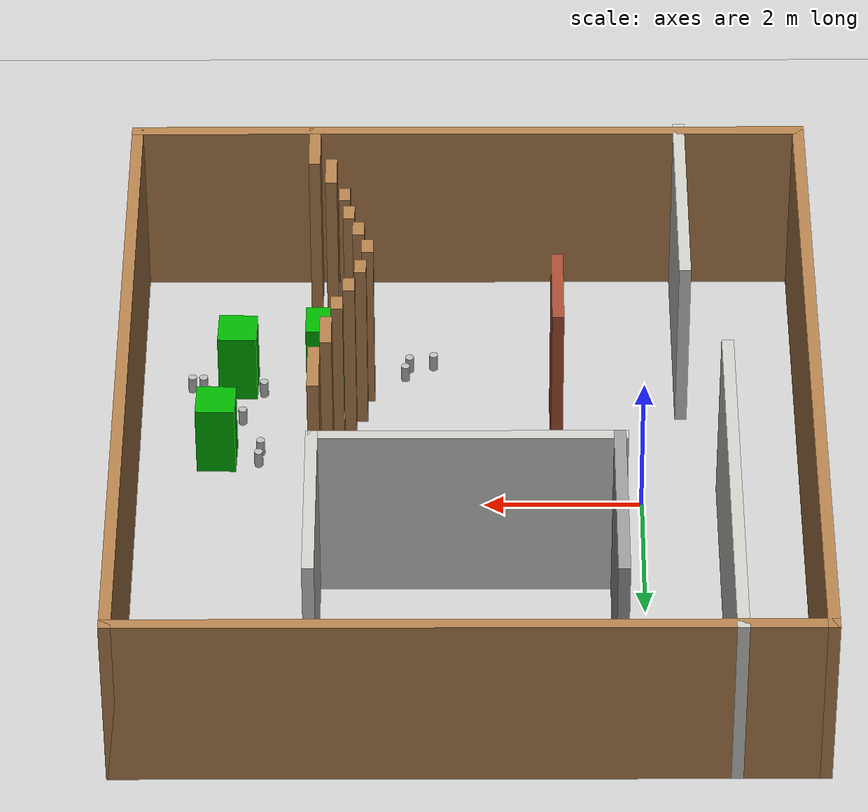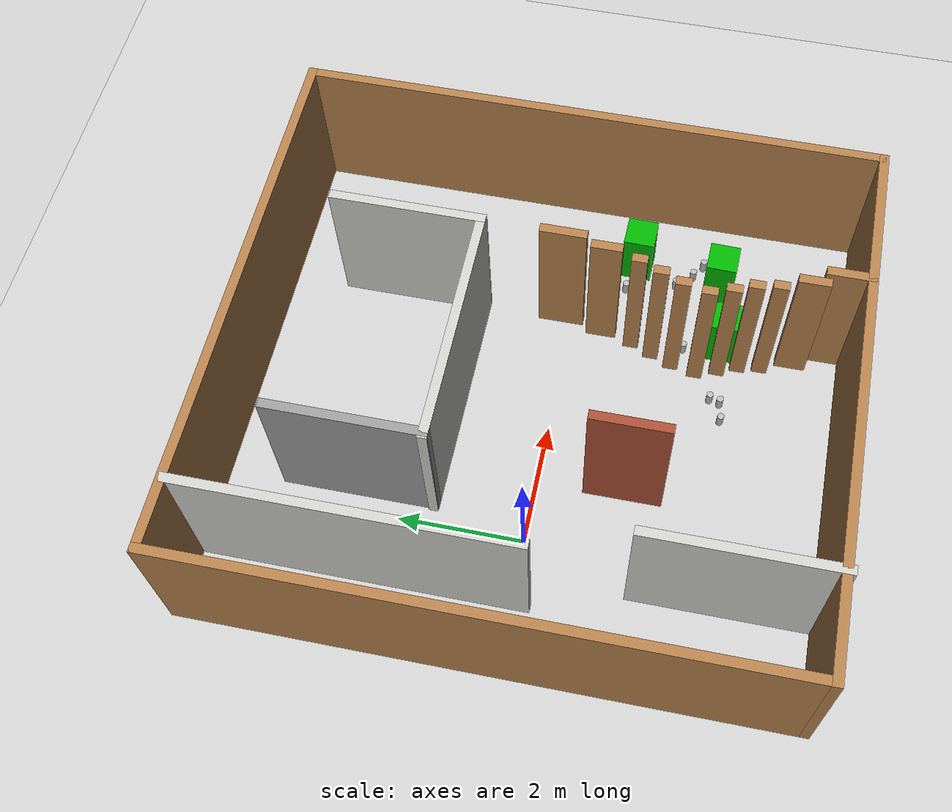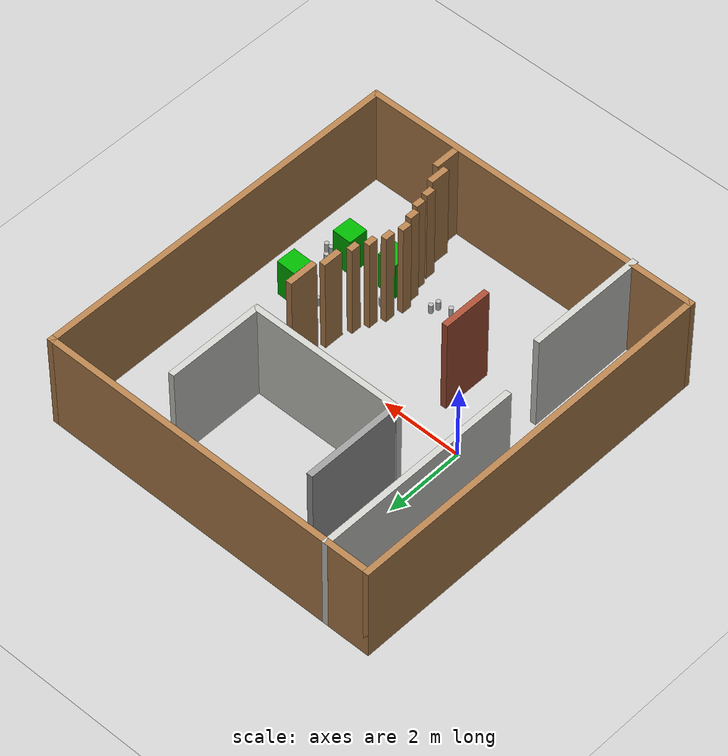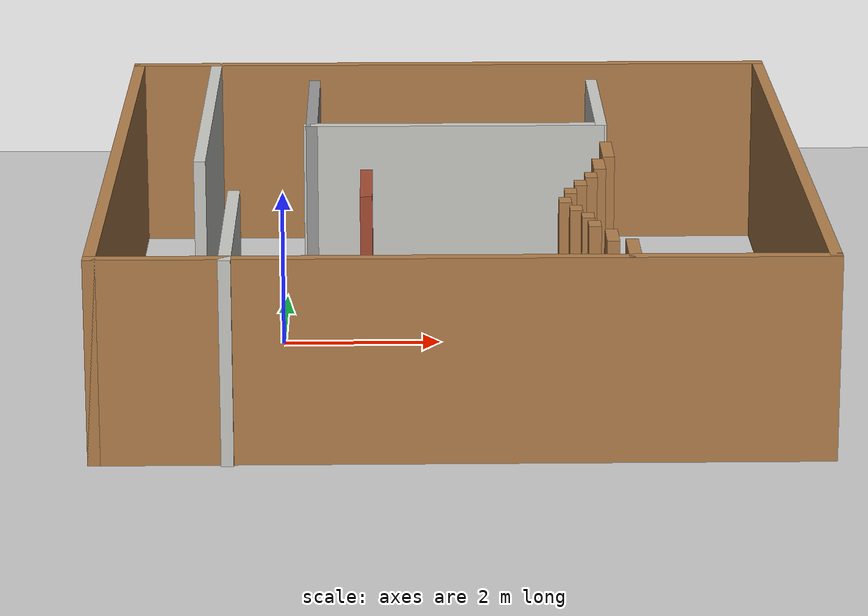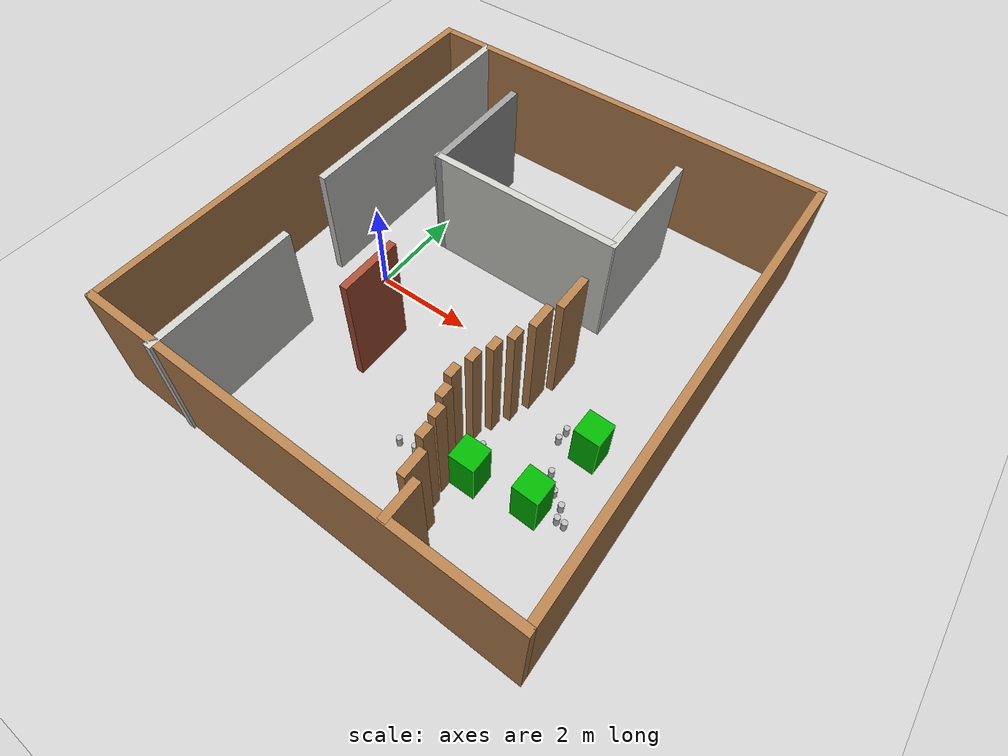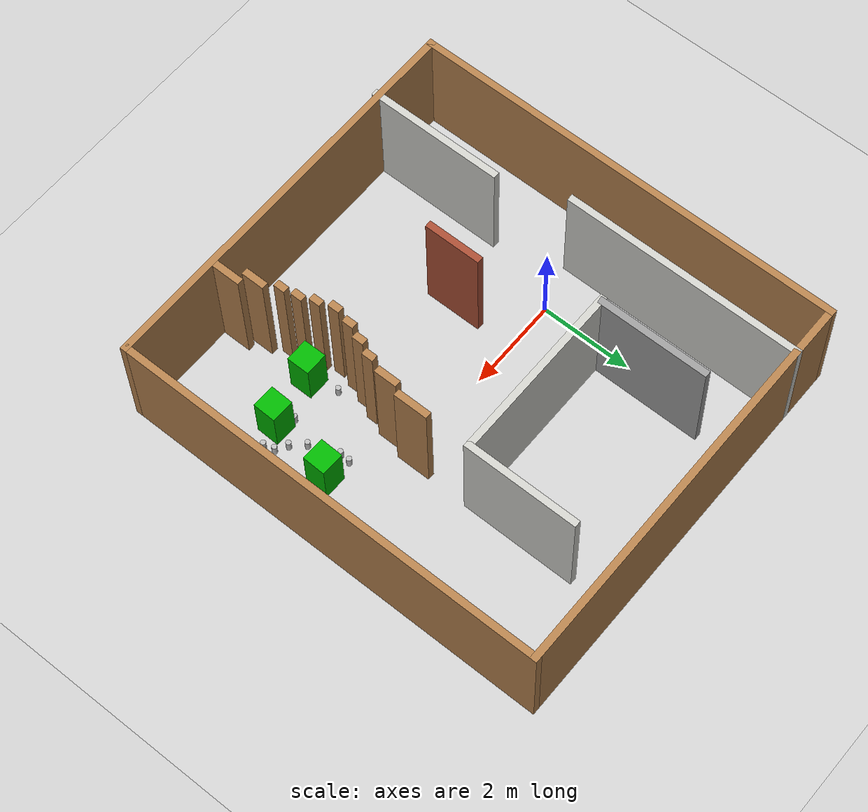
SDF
<sdf version="1.6">
 <world name="default">
  <model name="ground_plane">
   <static>1</static>
   <link name="link">
    <collision name="collision">
     <geometry><plane><normal>0 0 1</normal><size>100 100</size></plane></geometry>
     <surface><friction><ode><mu>100</mu><mu2>50</mu2></ode></friction></surface>
    </collision>
    <visual name="visual">
     <cast_shadows>0</cast_shadows>
     <geometry><plane><normal>0 0 1</normal><size>100 100</size></plane></geometry>
     <material>
      <script><uri>file://media/materials/scripts/gazebo.material</uri><name>Gazebo/Grey</name></script>
     </material>
    </visual>
   </link>
  </model>
  <model name="comp4034_environment">
   <pose>2.19918 0.147113 0 0 -0 0</pose>
   <link name="Wall_1">
    <collision name="Wall_1_Collision">
     <geometry><box><size>8.75 0.15 2.5</size></box></geometry>
     <pose>0 0 1.25 0 -0 0</pose>
    </collision>
    <visual name="Wall_1_Visual">
     <pose>0 0 1.25 0 -0 0</pose>
     <geometry><box><size>8.75 0.15 2.5</size></box></geometry>
     <material>
      <script><uri>file://media/materials/scripts/gazebo.material</uri><name>Gazebo/Wood</name></script>
      <ambient>1 1 1 1</ambient>
     </material>
     <meta><layer>0</layer></meta>
    </visual>
    <pose>-0 -4.67766 0 0 -0 0</pose>
   </link>
   <link name="Wall_16">
    <collision name="Wall_16_Collision">
     <geometry><box><size>0.25 0.15 2.5</size></box></geometry>
     <pose>0 0 1.25 0 -0 0</pose>
    </collision>
    <visual name="Wall_16_Visual">
     <pose>0 0 1.25 0 -0 0</pose>
     <geometry><box><size>0.25 0.15 2.5</size></box></geometry>
     <material>
      <script><uri>file://media/materials/scripts/gazebo.material</uri><name>Gazebo/Wood</name></script>
      <ambient>1 1 1 1</ambient>
     </material>
     <meta><layer>0</layer></meta>
    </visual>
    <pose>1.39958 -2.65835 0 0 -0 1.5708</pose>
   </link>
   <link name="Wall_18">
    <collision name="Wall_18_Collision">
     <geometry><box><size>0.25 0.15 2.5</size></box></geometry>
     <pose>0 0 1.25 0 -0 0</pose>
    </collision>
    <visual name="Wall_18_Visual">
     <pose>0 0 1.25 0 -0 0</pose>
     <geometry><box><size>0.25 0.15 2.5</size></box></geometry>
     <material>
      <script><uri>file://media/materials/scripts/gazebo.material</uri><name>Gazebo/Wood</name></script>
      <ambient>1 1 1 1</ambient>
     </material>
     <meta><layer>0</layer></meta>
    </visual>
    <pose>1.28384 -2.30376 0 0 -0 1.5708</pose>
   </link>
   <link name="Wall_21">
    <collision name="Wall_21_Collision">
     <geometry><box><size>0.25 0.15 2.5</size></box></geometry>
     <pose>0 0 1.25 0 -0 0</pose>
    </collision>
    <visual name="Wall_21_Visual">
     <pose>0 0 1.25 0 -0 0</pose>
     <geometry><box><size>0.25 0.15 2.5</size></box></geometry>
     <material>
      <script><uri>file://media/materials/scripts/gazebo.material</uri><name>Gazebo/Wood</name></script>
      <ambient>1 1 1 1</ambient>
     </material>
     <meta><layer>0</layer></meta>
    </visual>
    <pose>1.36975 -1.89289 0 0 -0 1.5708</pose>
   </link>
   <link name="Wall_23">
    <collision name="Wall_23_Collision">
     <geometry><box><size>0.25 0.15 2.5</size></box></geometry>
     <pose>0 0 1.25 0 -0 0</pose>
    </collision>
    <visual name="Wall_23_Visual">
     <pose>0 0 1.25 0 -0 0</pose>
     <geometry><box><size>0.25 0.15 2.5</size></box></geometry>
     <material>
      <script><uri>file://media/materials/scripts/gazebo.material</uri><name>Gazebo/Wood</name></script>
      <ambient>1 1 1 1</ambient>
     </material>
     <meta><layer>0</layer></meta>
    </visual>
    <pose>1.50857 -1.53493 0 0 -0 1.5708</pose>
   </link>
   <link name="Wall_25">
    <collision name="Wall_25_Collision">
     <geometry><box><size>0.25 0.15 2.5</size></box></geometry>
     <pose>0 0 1.25 0 -0 0</pose>
    </collision>
    <visual name="Wall_25_Visual">
     <pose>0 0 1.25 0 -0 0</pose>
     <geometry><box><size>0.25 0.15 2.5</size></box></geometry>
     <material>
      <script><uri>file://media/materials/scripts/gazebo.material</uri><name>Gazebo/Wood</name></script>
      <ambient>1 1 1 1</ambient>
     </material>
     <meta><layer>0</layer></meta>
    </visual>
    <pose>1.65732 -1.18034 0 0 -0 1.5708</pose>
   </link>
   <link name="Wall_27">
    <collision name="Wall_27_Collision">
     <geometry><box><size>0.5 0.15 2.5</size></box></geometry>
     <pose>0 0 1.25 0 -0 0</pose>
    </collision>
    <visual name="Wall_27_Visual">
     <pose>0 0 1.25 0 -0 0</pose>
     <geometry><box><size>0.5 0.15 2.5</size></box></geometry>
     <material>
      <script><uri>file://media/materials/scripts/gazebo.material</uri><name>Gazebo/Wood</name></script>
      <ambient>1 1 1 1</ambient>
     </material>
     <meta><layer>0</layer></meta>
    </visual>
    <pose>1.78619 -0.651034 0 0 -0 1.5708</pose>
   </link>
   <link name="Wall_3">
    <collision name="Wall_3_Collision">
     <geometry><box><size>9.5529 0.15 2.5</size></box></geometry>
     <pose>0 0 1.25 0 -0 0</pose>
    </collision>
    <visual name="Wall_3_Visual">
     <pose>0 0 1.25 0 -0 0</pose>
     <geometry><box><size>9.5529 0.15 2.5</size></box></geometry>
     <material>
      <script><uri>file://media/materials/scripts/gazebo.material</uri><name>Gazebo/Wood</name></script>
      <ambient>1 1 1 1</ambient>
     </material>
     <meta><layer>0</layer></meta>
    </visual>
    <pose>-4.3 0.023792 0 0 -0 1.5708</pose>
   </link>
   <link name="Wall_30">
    <collision name="Wall_30_Collision">
     <geometry><box><size>0.75 0.15 2.5</size></box></geometry>
     <pose>0 0 1.25 0 -0 0</pose>
    </collision>
    <visual name="Wall_30_Visual">
     <pose>0 0 1.25 0 -0 0</pose>
     <geometry><box><size>0.75 0.15 2.5</size></box></geometry>
     <material>
      <script><uri>file://media/materials/scripts/gazebo.material</uri><name>Gazebo/Wood</name></script>
      <ambient>1 1 1 1</ambient>
     </material>
     <meta><layer>0</layer></meta>
    </visual>
    <pose>1.92912 0.051937 0 0 -0 1.5708</pose>
   </link>
   <link name="Wall_32">
    <collision name="Wall_32_Collision">
     <geometry><box><size>2.5 0.15 2.5</size></box></geometry>
     <pose>0 0 1.25 0 -0 0</pose>
    </collision>
    <visual name="Wall_32_Visual">
     <pose>0 0 1.25 0 -0 0</pose>
     <geometry><box><size>2.5 0.15 2.5</size></box></geometry>
     <material>
      <script><uri>file://media/materials/scripts/gazebo.material</uri><name>Gazebo/CeilingTiled</name></script>
      <ambient>0.760784 0.662745 0.627451 1</ambient>
     </material>
     <meta><layer>0</layer></meta>
    </visual>
    <pose>1.9255 2.52077 0 0 -0 1.5708</pose>
   </link>
   <link name="Wall_34">
    <collision name="Wall_34_Collision">
     <geometry><box><size>3.92584 0.15 2.5</size></box></geometry>
     <pose>0 0 1.25 0 -0 0</pose>
    </collision>
    <visual name="Wall_34_Visual">
     <pose>0 0 1.25 0 -0 0</pose>
     <geometry><box><size>3.92584 0.15 2.5</size></box></geometry>
     <material>
      <script><uri>file://media/materials/scripts/gazebo.material</uri><name>Gazebo/CeilingTiled</name></script>
      <ambient>0.760784 0.662745 0.627451 1</ambient>
     </material>
     <meta><layer>0</layer></meta>
    </visual>
    <pose>0.007157 1.34577 0 0 -0 3.14159</pose>
   </link>
   <link name="Wall_4">
    <collision name="Wall_4_Collision">
     <geometry><box><size>8.75 0.15 2.5</size></box></geometry>
     <pose>0 0 1.25 0 -0 0</pose>
    </collision>
    <visual name="Wall_4_Visual">
     <pose>0 0 1.25 0 -0 0</pose>
     <geometry><box><size>8.75 0.15 2.5</size></box></geometry>
     <material>
      <script><uri>file://media/materials/scripts/gazebo.material</uri><name>Gazebo/Wood</name></script>
      <ambient>1 1 1 1</ambient>
     </material>
     <meta><layer>0</layer></meta>
    </visual>
    <pose>-0 4.72524 0 0 -0 0</pose>
   </link>
   <link name="Wall_40">
    <collision name="Wall_40_Collision">
     <geometry><box><size>1.25 0.15 2.5</size></box></geometry>
     <pose>0 0 1.25 0 -0 0</pose>
    </collision>
    <visual name="Wall_40_Visual">
     <pose>0 0 1.25 0 -0 0</pose>
     <geometry><box><size>1.25 0.15 2.5</size></box></geometry>
     <material>
      <script><uri>file://media/materials/scripts/gazebo.material</uri><name>Gazebo/Bricks</name></script>
      <ambient>1 1 1 1</ambient>
     </material>
     <meta><layer>0</layer></meta>
    </visual>
    <pose>-1.12606 -1.50275 0 0 -0 -1.5708</pose>
   </link>
   <link name="Wall_45">
    <collision name="Wall_45_Collision">
     <geometry><box><size>0.5 0.15 2.5</size></box></geometry>
     <pose>0 0 1.25 0 -0 0</pose>
    </collision>
    <visual name="Wall_45_Visual">
     <pose>0 0 1.25 0 -0 0</pose>
     <geometry><box><size>0.5 0.15 2.5</size></box></geometry>
     <material>
      <script><uri>file://media/materials/scripts/gazebo.material</uri><name>Gazebo/Wood</name></script>
      <ambient>1 1 1 1</ambient>
     </material>
     <meta><layer>0</layer></meta>
    </visual>
    <pose>1.76668 -3.82995 0 0 -0 1.5708</pose>
   </link>
   <link name="Wall_5">
    <collision name="Wall_5_Collision">
     <geometry><box><size>9.5 0.15 2.5</size></box></geometry>
     <pose>0 0 1.25 0 -0 0</pose>
    </collision>
    <visual name="Wall_5_Visual">
     <pose>0 0 1.25 0 -0 0</pose>
     <geometry><box><size>9.5 0.15 2.5</size></box></geometry>
     <material>
      <script><uri>file://media/materials/scripts/gazebo.material</uri><name>Gazebo/Wood</name></script>
      <ambient>1 1 1 1</ambient>
     </material>
     <meta><layer>0</layer></meta>
    </visual>
    <pose>4.3 0.050242 0 0 -0 -1.5708</pose>
   </link>
   <link name="Wall_52">
    <collision name="Wall_52_Collision">
     <geometry><box><size>0.75 0.15 2.5</size></box></geometry>
     <pose>0 0 1.25 0 -0 0</pose>
    </collision>
    <visual name="Wall_52_Visual">
     <pose>0 0 1.25 0 -0 0</pose>
     <geometry><box><size>0.75 0.15 2.5</size></box></geometry>
     <material>
      <script><uri>file://media/materials/scripts/gazebo.material</uri><name>Gazebo/Wood</name></script>
      <ambient>1 1 1 1</ambient>
     </material>
     <meta><layer>0</layer></meta>
    </visual>
    <pose>1.98668 -4.35495 0 0 -0 1.5708</pose>
   </link>
   <link name="Wall_56">
    <collision name="Wall_56_Collision">
     <geometry><box><size>0.25 0.15 2.5</size></box></geometry>
     <pose>0 0 1.25 0 -0 0</pose>
    </collision>
    <visual name="Wall_56_Visual">
     <pose>0 0 1.25 0 -0 0</pose>
     <geometry><box><size>0.25 0.15 2.5</size></box></geometry>
     <material>
      <script><uri>file://media/materials/scripts/gazebo.material</uri><name>Gazebo/Wood</name></script>
      <ambient>1 1 1 1</ambient>
     </material>
     <meta><layer>0</layer></meta>
    </visual>
    <pose>1.52668 -2.98495 0 0 -0 -1.5708</pose>
   </link>
   <link name="Wall_58">
    <collision name="Wall_58_Collision">
     <geometry><box><size>0.25 0.15 2.5</size></box></geometry>
     <pose>0 0 1.25 0 -0 0</pose>
    </collision>
    <visual name="Wall_58_Visual">
     <pose>0 0 1.25 0 -0 0</pose>
     <geometry><box><size>0.25 0.15 2.5</size></box></geometry>
     <material>
      <script><uri>file://media/materials/scripts/gazebo.material</uri><name>Gazebo/Wood</name></script>
      <ambient>1 1 1 1</ambient>
     </material>
     <meta><layer>0</layer></meta>
    </visual>
    <pose>1.58668 -3.34495 0 0 -0 -1.5708</pose>
   </link>
   <link name="Wall_60">
    <collision name="Wall_60_Collision">
     <geometry><box><size>2.5 0.15 2.5</size></box></geometry>
     <pose>0 0 1.25 0 -0 0</pose>
    </collision>
    <visual name="Wall_60_Visual">
     <pose>0 0 1.25 0 -0 0</pose>
     <geometry><box><size>2.5 0.15 2.5</size></box></geometry>
     <material>
      <script><uri>file://media/materials/scripts/gazebo.material</uri><name>Gazebo/Grey</name></script>
      <ambient>1 1 1 1</ambient>
     </material>
     <meta><layer>0</layer></meta>
    </visual>
    <pose>-1.85035 2.52077 0 0 -0 1.5708</pose>
   </link>
   <link name="Wall_7">
    <collision name="Wall_7_Collision">
     <geometry><box><size>5.25 0.15 2.5</size></box></geometry>
     <pose>0 0 1.25 0 -0 0</pose>
    </collision>
    <visual name="Wall_7_Visual">
     <pose>0 0 1.25 0 -0 0</pose>
     <geometry><box><size>5.25 0.15 2.5</size></box></geometry>
     <material>
      <script><uri>file://media/materials/scripts/gazebo.material</uri><name>Gazebo/CeilingTiled</name></script>
      <ambient>0.760784 0.662745 0.627451 1</ambient>
     </material>
     <meta><layer>0</layer></meta>
    </visual>
    <pose>-3.23089 2.17626 0 0 -0 -1.5708</pose>
   </link>
   <link name="Wall_9">
    <collision name="Wall_9_Collision">
     <geometry><box><size>3 0.15 2.5</size></box></geometry>
     <pose>0 0 1.25 0 -0 0</pose>
    </collision>
    <visual name="Wall_9_Visual">
     <pose>0 0 1.25 0 -0 0</pose>
     <geometry><box><size>3 0.15 2.5</size></box></geometry>
     <material>
      <script><uri>file://media/materials/scripts/gazebo.material</uri><name>Gazebo/CeilingTiled</name></script>
      <ambient>0.760784 0.662745 0.627451 1</ambient>
     </material>
     <meta><layer>0</layer></meta>
    </visual>
    <pose>-2.74464 -3.30126 0 0 -0 1.5708</pose>
   </link>
   <static>1</static>
  </model>
  <model name="beer_1">
   <link name="link">
    <pose>0 0 0.115 0 -0 0</pose>
    <inertial>
     <mass>0.01</mass>
     <inertia><ixx>0.00058</ixx><ixy>0</ixy><ixz>0</ixz><iyy>0.00058</iyy><iyz>0</iyz><izz>0.00019</izz></inertia>
    </inertial>
    <collision name="collision">
     <geometry><cylinder><radius>0.055</radius><length>0.23</length></cylinder></geometry>
    </collision>
    <visual name="visual">
     <geometry><cylinder><radius>0.055</radius><length>0.23</length></cylinder></geometry>
     <material>
      <script>
       <uri>model://beer/materials/scripts</uri>
       <uri>model://beer/materials/textures</uri>
       <name>Beer/Diffuse</name>
      </script>
     </material>
    </visual>
   </link>
   <pose>5.11085 -1.60496 -1e-06 2e-06 0 -7e-06</pose>
  </model>
  <model name="beer_4">
   <link name="link">
    <pose>0 0 0.115 0 -0 0</pose>
    <inertial>
     <mass>0.01</mass>
     <inertia><ixx>0.00058</ixx><ixy>0</ixy><ixz>0</ixz><iyy>0.00058</iyy><iyz>0</iyz><izz>0.00019</izz></inertia>
    </inertial>
    <collision name="collision">
     <geometry><cylinder><radius>0.055</radius><length>0.23</length></cylinder></geometry>
    </collision>
    <visual name="visual">
     <geometry><cylinder><radius>0.055</radius><length>0.23</length></cylinder></geometry>
     <material>
      <script>
       <uri>model://beer/materials/scripts</uri>
       <uri>model://beer/materials/textures</uri>
       <name>Beer/Diffuse</name>
      </script>
     </material>
    </visual>
   </link>
   <pose>5.78051 -2.24553 -1e-06 2e-06 0 -7e-06</pose>
  </model>
  <model name="beer_5">
   <link name="link">
    <pose>0 0 0.115 0 -0 0</pose>
    <inertial>
     <mass>0.01</mass>
     <inertia><ixx>0.00058</ixx><ixy>0</ixy><ixz>0</ixz><iyy>0.00058</iyy><iyz>0</iyz><izz>0.00019</izz></inertia>
    </inertial>
    <collision name="collision">
     <geometry><cylinder><radius>0.055</radius><length>0.23</length></cylinder></geometry>
    </collision>
    <visual name="visual">
     <geometry><cylinder><radius>0.055</radius><length>0.23</length></cylinder></geometry>
     <material>
      <script>
       <uri>model://beer/materials/scripts</uri>
       <uri>model://beer/materials/textures</uri>
       <name>Beer/Diffuse</name>
      </script>
     </material>
    </visual>
   </link>
   <pose>5.57469 -2.02105 -1e-06 2e-06 0 -7e-06</pose>
  </model>
  <model name="beer_6">
   <link name="link">
    <pose>0 0 0.115 0 -0 0</pose>
    <inertial>
     <mass>0.01</mass>
     <inertia><ixx>0.00058</ixx><ixy>0</ixy><ixz>0</ixz><iyy>0.00058</iyy><iyz>0</iyz><izz>0.00019</izz></inertia>
    </inertial>
    <collision name="collision">
     <geometry><cylinder><radius>0.055</radius><length>0.23</length></cylinder></geometry>
    </collision>
    <visual name="visual">
     <geometry><cylinder><radius>0.055</radius><length>0.23</length></cylinder></geometry>
     <material>
      <script>
       <uri>model://beer/materials/scripts</uri>
       <uri>model://beer/materials/textures</uri>
       <name>Beer/Diffuse</name>
      </script>
     </material>
    </visual>
   </link>
   <pose>5.34333 -1.87203 -1e-06 2e-06 0 -7e-06</pose>
  </model>
  <model name="beer_4_clone_12">
   <link name="link">
    <pose>0 0 0.115 0 -0 0</pose>
    <inertial>
     <mass>0.01</mass>
     <inertia><ixx>0.00058</ixx><ixy>0</ixy><ixz>0</ixz><iyy>0.00058</iyy><iyz>0</iyz><izz>0.00019</izz></inertia>
    </inertial>
    <collision name="collision">
     <geometry><cylinder><radius>0.055</radius><length>0.23</length></cylinder></geometry>
    </collision>
    <visual name="visual">
     <geometry><cylinder><radius>0.055</radius><length>0.23</length></cylinder></geometry>
     <material>
      <script>
       <uri>model://beer/materials/scripts</uri>
       <uri>model://beer/materials/textures</uri>
       <name>Beer/Diffuse</name>
      </script>
     </material>
    </visual>
   </link>
   <pose>2.96327 -2.63773 -3e-06 -0 -0 -1e-06</pose>
  </model>
  <model name="beer_4_clone_13">
   <link name="link">
    <pose>0 0 0.115 0 -0 0</pose>
    <inertial>
     <mass>0.01</mass>
     <inertia><ixx>0.00058</ixx><ixy>0</ixy><ixz>0</ixz><iyy>0.00058</iyy><iyz>0</iyz><izz>0.00019</izz></inertia>
    </inertial>
    <collision name="collision">
     <geometry><cylinder><radius>0.055</radius><length>0.23</length></cylinder></geometry>
    </collision>
    <visual name="visual">
     <geometry><cylinder><radius>0.055</radius><length>0.23</length></cylinder></geometry>
     <material>
      <script>
       <uri>model://beer/materials/scripts</uri>
       <uri>model://beer/materials/textures</uri>
       <name>Beer/Diffuse</name>
      </script>
     </material>
    </visual>
   </link>
   <pose>2.6492 -2.6854 -3e-06 -0 -0 -1e-06</pose>
  </model>
  <model name="beer_5_clone">
   <link name="link">
    <pose>0 0 0.115 0 -0 0</pose>
    <inertial>
     <mass>0.01</mass>
     <inertia><ixx>0.00058</ixx><ixy>0</ixy><ixz>0</ixz><iyy>0.00058</iyy><iyz>0</iyz><izz>0.00019</izz></inertia>
    </inertial>
    <collision name="collision">
     <geometry><cylinder><radius>0.055</radius><length>0.23</length></cylinder></geometry>
    </collision>
    <visual name="visual">
     <geometry><cylinder><radius>0.055</radius><length>0.23</length></cylinder></geometry>
     <material>
      <script>
       <uri>model://beer/materials/scripts</uri>
       <uri>model://beer/materials/textures</uri>
       <name>Beer/Diffuse</name>
      </script>
     </material>
    </visual>
   </link>
   <pose>4.84828 -2.15471 -6e-06 0 -0 -2.7e-05</pose>
  </model>
  <model name="beer_5_clone_0">
   <link name="link">
    <pose>0 0 0.115 0 -0 0</pose>
    <inertial>
     <mass>0.01</mass>
     <inertia><ixx>0.00058</ixx><ixy>0</ixy><ixz>0</ixz><iyy>0.00058</iyy><iyz>0</iyz><izz>0.00019</izz></inertia>
    </inertial>
    <collision name="collision">
     <geometry><cylinder><radius>0.055</radius><length>0.23</length></cylinder></geometry>
    </collision>
    <visual name="visual">
     <geometry><cylinder><radius>0.055</radius><length>0.23</length></cylinder></geometry>
     <material>
      <script>
       <uri>model://beer/materials/scripts</uri>
       <uri>model://beer/materials/textures</uri>
       <name>Beer/Diffuse</name>
      </script>
     </material>
    </visual>
   </link>
   <pose>5.63774 -2.24074 -6e-06 0 -0 -2.7e-05</pose>
  </model>
  <model name="beer_3_clone">
   <link name="link">
    <pose>0 0 0.115 0 -0 0</pose>
    <inertial>
     <mass>0.01</mass>
     <inertia><ixx>0.00058</ixx><ixy>0</ixy><ixz>0</ixz><iyy>0.00058</iyy><iyz>0</iyz><izz>0.00019</izz></inertia>
    </inertial>
    <collision name="collision">
     <geometry><cylinder><radius>0.055</radius><length>0.23</length></cylinder></geometry>
    </collision>
    <visual name="visual">
     <geometry><cylinder><radius>0.055</radius><length>0.23</length></cylinder></geometry>
     <material>
      <script>
       <uri>model://beer/materials/scripts</uri>
       <uri>model://beer/materials/textures</uri>
       <name>Beer/Diffuse</name>
      </script>
     </material>
    </visual>
   </link>
   <pose>3.01358 -2.46526 -1e-06 4e-06 -0 -2.5e-05</pose>
  </model>
  <model name="beer_4_clone_10_clone_13">
   <link name="link">
    <pose>0 0 0.115 0 -0 0</pose>
    <inertial>
     <mass>0.01</mass>
     <inertia><ixx>0.00058</ixx><ixy>0</ixy><ixz>0</ixz><iyy>0.00058</iyy><iyz>0</iyz><izz>0.00019</izz></inertia>
    </inertial>
    <collision name="collision">
     <geometry><cylinder><radius>0.055</radius><length>0.23</length></cylinder></geometry>
    </collision>
    <visual name="visual">
     <geometry><cylinder><radius>0.055</radius><length>0.23</length></cylinder></geometry>
     <material>
      <script>
       <uri>model://beer/materials/scripts</uri>
       <uri>model://beer/materials/textures</uri>
       <name>Beer/Diffuse</name>
      </script>
     </material>
    </visual>
   </link>
   <pose>3.88411 -1.9047 -1e-06 2e-06 0 -1.3e-05</pose>
  </model>
  <model name="beer_4_clone_10_clone_14">
   <link name="link">
    <pose>0 0 0.115 0 -0 0</pose>
    <inertial>
     <mass>0.01</mass>
     <inertia><ixx>0.00058</ixx><ixy>0</ixy><ixz>0</ixz><iyy>0.00058</iyy><iyz>0</iyz><izz>0.00019</izz></inertia>
    </inertial>
    <collision name="collision">
     <geometry><cylinder><radius>0.055</radius><length>0.23</length></cylinder></geometry>
    </collision>
    <visual name="visual">
     <geometry><cylinder><radius>0.055</radius><length>0.23</length></cylinder></geometry>
     <material>
      <script>
       <uri>model://beer/materials/scripts</uri>
       <uri>model://beer/materials/textures</uri>
       <name>Beer/Diffuse</name>
      </script>
     </material>
    </visual>
   </link>
   <pose>4.865 -1.00241 -1e-06 2e-06 0 -1.3e-05</pose>
  </model>
  <model name="beer_4_clone_10_clone_15">
   <link name="link">
    <pose>0 0 0.115 0 -0 0</pose>
    <inertial>
     <mass>0.01</mass>
     <inertia><ixx>0.00058</ixx><ixy>0</ixy><ixz>0</ixz><iyy>0.00058</iyy><iyz>0</iyz><izz>0.00019</izz></inertia>
    </inertial>
    <collision name="collision">
     <geometry><cylinder><radius>0.055</radius><length>0.23</length></cylinder></geometry>
    </collision>
    <visual name="visual">
     <geometry><cylinder><radius>0.055</radius><length>0.23</length></cylinder></geometry>
     <material>
      <script>
       <uri>model://beer/materials/scripts</uri>
       <uri>model://beer/materials/textures</uri>
       <name>Beer/Diffuse</name>
      </script>
     </material>
    </visual>
   </link>
   <pose>4.88469 -0.780738 -1e-06 2e-06 0 -1.3e-05</pose>
  </model>
  <model name="green_box_clone_clone">
   <link name="link_0">
    <inertial>
     <mass>0.248832</mass>
     <inertia>
      <ixx>0.0258912</ixx>
      <ixy>0</ixy>
      <ixz>0</ixz>
      <iyy>0.0259005</iyy>
      <iyz>0</iyz>
      <izz>0.0103197</izz>
     </inertia>
    </inertial>
    <visual name="visual">
     <geometry><box><size>0.499059 0.498611 1</size></box></geometry>
     <material>
      <lighting>1</lighting>
      <script><uri>file://media/materials/scripts/gazebo.material</uri><name>Gazebo/Grey</name></script>
      <shader type="vertex"><normal_map>__default__</normal_map></shader>
      <ambient>0 0.3 0 1</ambient>
      <diffuse>0 0.7 0 1</diffuse>
      <specular>0.01 0.01 0.01 1</specular>
      <emissive>0 0 0 1</emissive>
     </material>
    </visual>
    <collision name="collision">
     <geometry><box><size>0.499059 0.498611 1</size></box></geometry>
     <surface>
      <friction>
       <ode><mu>1</mu><mu2>1</mu2><fdir1>0 0 0</fdir1><slip1>0</slip1><slip2>0</slip2></ode>
       <torsional>
        <coefficient>1</coefficient>
        <patch_radius>0</patch_radius>
        <surface_radius>0</surface_radius>
        <use_patch_radius>1</use_patch_radius>
        <ode><slip>0</slip></ode>
       </torsional>
      </friction>
      <bounce><restitution_coefficient>0</restitution_coefficient><threshold>1e+06</threshold></bounce>
      <contact>
       <collide_without_contact>0</collide_without_contact>
       <collide_without_contact_bitmask>1</collide_without_contact_bitmask>
       <collide_bitmask>1</collide_bitmask>
       <ode>
        <soft_cfm>0</soft_cfm>
        <soft_erp>0.2</soft_erp>
        <kp>1e+13</kp>
        <kd>1</kd>
        <max_vel>0.01</max_vel>
        <min_depth>0</min_depth>
       </ode>
       <bullet>
        <split_impulse>1</split_impulse>
        <split_impulse_penetration_threshold>-0.01</split_impulse_penetration_threshold>
        <soft_cfm>0</soft_cfm>
        <soft_erp>0.2</soft_erp>
        <kp>1e+13</kp>
        <kd>1</kd>
       </bullet>
      </contact>
     </surface>
    </collision>
   </link>
   <static>0</static>
   <pose>5.17707 -2.32236 0.499997 6e-06 6e-06 -0.0262</pose>
  </model>
  <model name="green_box_clone_clone_0">
   <link name="link_0">
    <inertial>
     <mass>0.248832</mass>
     <inertia>
      <ixx>0.0258912</ixx>
      <ixy>0</ixy>
      <ixz>0</ixz>
      <iyy>0.0259005</iyy>
      <iyz>0</iyz>
      <izz>0.0103197</izz>
     </inertia>
    </inertial>
    <visual name="visual">
     <geometry><box><size>0.499059 0.498611 1</size></box></geometry>
     <material>
      <lighting>1</lighting>
      <script><uri>file://media/materials/scripts/gazebo.material</uri><name>Gazebo/Grey</name></script>
      <shader type="vertex"><normal_map>__default__</normal_map></shader>
      <ambient>0 0.3 0 1</ambient>
      <diffuse>0 0.7 0 1</diffuse>
      <specular>0.01 0.01 0.01 1</specular>
      <emissive>0 0 0 1</emissive>
     </material>
    </visual>
    <collision name="collision">
     <geometry><box><size>0.499059 0.498611 1</size></box></geometry>
     <surface>
      <friction>
       <ode><mu>1</mu><mu2>1</mu2><fdir1>0 0 0</fdir1><slip1>0</slip1><slip2>0</slip2></ode>
       <torsional>
        <coefficient>1</coefficient>
        <patch_radius>0</patch_radius>
        <surface_radius>0</surface_radius>
        <use_patch_radius>1</use_patch_radius>
        <ode><slip>0</slip></ode>
       </torsional>
      </friction>
      <bounce><restitution_coefficient>0</restitution_coefficient><threshold>1e+06</threshold></bounce>
      <contact>
       <collide_without_contact>0</collide_without_contact>
       <collide_without_contact_bitmask>1</collide_without_contact_bitmask>
       <collide_bitmask>1</collide_bitmask>
       <ode>
        <soft_cfm>0</soft_cfm>
        <soft_erp>0.2</soft_erp>
        <kp>1e+13</kp>
        <kd>1</kd>
        <max_vel>0.01</max_vel>
        <min_depth>0</min_depth>
       </ode>
       <bullet>
        <split_impulse>1</split_impulse>
        <split_impulse_penetration_threshold>-0.01</split_impulse_penetration_threshold>
        <soft_cfm>0</soft_cfm>
        <soft_erp>0.2</soft_erp>
        <kp>1e+13</kp>
        <kd>1</kd>
       </bullet>
      </contact>
     </surface>
    </collision>
   </link>
   <static>0</static>
   <pose>5.41932 -0.904472 0.499998 -6e-06 4e-06 -0.02639</pose>
  </model>
  <model name="green_box_clone_clone_clone">
   <link name="link_0">
    <inertial>
     <mass>0.248832</mass>
     <inertia>
      <ixx>0.0258912</ixx>
      <ixy>0</ixy>
      <ixz>0</ixz>
      <iyy>0.0259005</iyy>
      <iyz>0</iyz>
      <izz>0.0103197</izz>
     </inertia>
    </inertial>
    <visual name="visual">
     <geometry><box><size>0.499059 0.498611 1</size></box></geometry>
     <material>
      <lighting>1</lighting>
      <script><uri>file://media/materials/scripts/gazebo.material</uri><name>Gazebo/Grey</name></script>
      <shader type="vertex"><normal_map>__default__</normal_map></shader>
      <ambient>0 0.3 0 1</ambient>
      <diffuse>0 0.7 0 1</diffuse>
      <specular>0.01 0.01 0.01 1</specular>
      <emissive>0 0 0 1</emissive>
     </material>
    </visual>
    <collision name="collision">
     <geometry><box><size>0.499059 0.498611 1</size></box></geometry>
     <surface>
      <friction>
       <ode><mu>1</mu><mu2>1</mu2><fdir1>0 0 0</fdir1><slip1>0</slip1><slip2>0</slip2></ode>
       <torsional>
        <coefficient>1</coefficient>
        <patch_radius>0</patch_radius>
        <surface_radius>0</surface_radius>
        <use_patch_radius>1</use_patch_radius>
        <ode><slip>0</slip></ode>
       </torsional>
      </friction>
      <bounce><restitution_coefficient>0</restitution_coefficient><threshold>1e+06</threshold></bounce>
      <contact>
       <collide_without_contact>0</collide_without_contact>
       <collide_without_contact_bitmask>1</collide_without_contact_bitmask>
       <collide_bitmask>1</collide_bitmask>
       <ode>
        <soft_cfm>0</soft_cfm>
        <soft_erp>0.2</soft_erp>
        <kp>1e+13</kp>
        <kd>1</kd>
        <max_vel>0.01</max_vel>
        <min_depth>0</min_depth>
       </ode>
       <bullet>
        <split_impulse>1</split_impulse>
        <split_impulse_penetration_threshold>-0.01</split_impulse_penetration_threshold>
        <soft_cfm>0</soft_cfm>
        <soft_erp>0.2</soft_erp>
        <kp>1e+13</kp>
        <kd>1</kd>
       </bullet>
      </contact>
     </surface>
    </collision>
   </link>
   <static>0</static>
   <pose>4.04999 -2.48658 0.499997 6e-06 5e-06 0.002396</pose>
  </model>
 </world>
</sdf>
